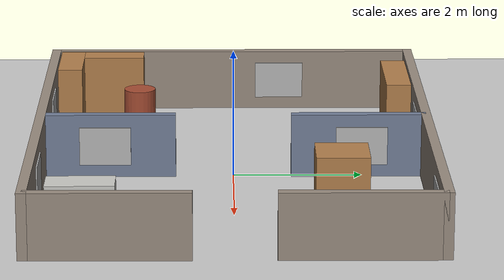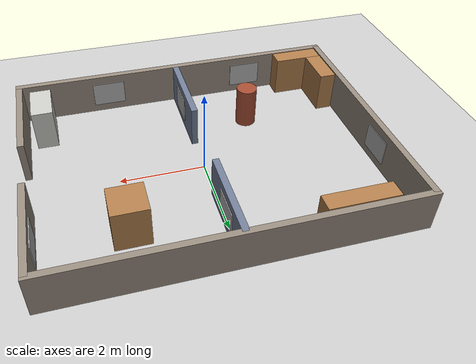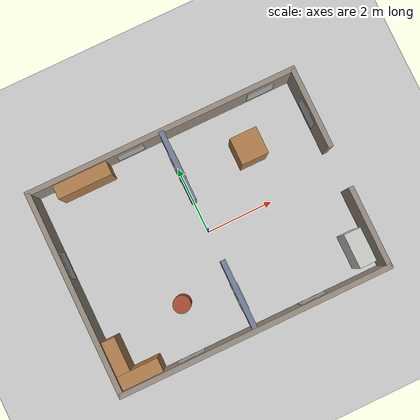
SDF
<?xml version="1.0" ?>
<sdf version="1.6">
  <world name="default">

    <include>
      <uri>model://ground_plane</uri>
    </include>

    <!-- Light source -->
    <include>
      <uri>model://sun</uri>
    </include>

    <scene>
      <ambient>0.4 0.4 0.4 1</ambient>
      <background>0.7 0.7 0.7 1</background>
      <shadows>1</shadows>
    </scene>

    <model name="building">
      <pose>0 0 0 0 0 0</pose>
      <static>1</static>

      <!-- North wall -->
      <link name="Wall_0">
        <pose>0 3 0 0 0 0</pose>
        <collision name="Wall_0_Collision">
          <geometry><box><size>8.15 0.15 1</size></box></geometry>
          <pose>0 0 0.5 0 0 0</pose>
        </collision>
        <visual name="Wall_0_Visual">
          <pose>0 0 0.5 0 0 0</pose>
          <geometry><box><size>8.15 0.15 1</size></box></geometry>
          <material>
            <ambient>0.45 0.4 0.35 1</ambient>
            <diffuse>0.6 0.55 0.5 1</diffuse>
            <specular>0 0 0 1</specular>
          </material>
        </visual>
      </link>

      <!-- South wall -->
      <link name="Wall_1">
        <pose>0 -3 0 0 0 0</pose>
        <collision name="Wall_1_Collision">
          <geometry><box><size>8.15 0.15 1</size></box></geometry>
          <pose>0 0 0.5 0 0 0</pose>
        </collision>
        <visual name="Wall_1_Visual">
          <pose>0 0 0.5 0 0 0</pose>
          <geometry><box><size>8.15 0.15 1</size></box></geometry>
          <material>
            <ambient>0.45 0.4 0.35 1</ambient>
            <diffuse>0.6 0.55 0.5 1</diffuse>
            <specular>0 0 0 1</specular>
          </material>
        </visual>
      </link>

      <!-- East wall, north of the 1.2 m entrance -->
      <link name="Wall_2">
        <pose>4 1.8 0 0 0 0</pose>
        <collision name="Wall_2_Collision">
          <geometry><box><size>0.15 2.4 1</size></box></geometry>
          <pose>0 0 0.5 0 0 0</pose>
        </collision>
        <visual name="Wall_2_Visual">
          <pose>0 0 0.5 0 0 0</pose>
          <geometry><box><size>0.15 2.4 1</size></box></geometry>
          <material>
            <ambient>0.45 0.4 0.35 1</ambient>
            <diffuse>0.6 0.55 0.5 1</diffuse>
            <specular>0 0 0 1</specular>
          </material>
        </visual>
      </link>

      <!-- East wall, south of the entrance -->
      <link name="Wall_3">
        <pose>4 -1.8 0 0 0 0</pose>
        <collision name="Wall_3_Collision">
          <geometry><box><size>0.15 2.4 1</size></box></geometry>
          <pose>0 0 0.5 0 0 0</pose>
        </collision>
        <visual name="Wall_3_Visual">
          <pose>0 0 0.5 0 0 0</pose>
          <geometry><box><size>0.15 2.4 1</size></box></geometry>
          <material>
            <ambient>0.45 0.4 0.35 1</ambient>
            <diffuse>0.6 0.55 0.5 1</diffuse>
            <specular>0 0 0 1</specular>
          </material>
        </visual>
      </link>

      <!-- West wall -->
      <link name="Wall_4">
        <pose>-4 0 0 0 0 0</pose>
        <collision name="Wall_4_Collision">
          <geometry><box><size>0.15 6 1</size></box></geometry>
          <pose>0 0 0.5 0 0 0</pose>
        </collision>
        <visual name="Wall_4_Visual">
          <pose>0 0 0.5 0 0 0</pose>
          <geometry><box><size>0.15 6 1</size></box></geometry>
          <material>
            <ambient>0.45 0.4 0.35 1</ambient>
            <diffuse>0.6 0.55 0.5 1</diffuse>
            <specular>0 0 0 1</specular>
          </material>
        </visual>
      </link>

      <!-- Interior partition, north of the 1.8 m doorway -->
      <link name="Wall_5">
        <pose>0 1.95 0 0 0 0</pose>
        <collision name="Wall_5_Collision">
          <geometry><box><size>0.15 2.1 1</size></box></geometry>
          <pose>0 0 0.5 0 0 0</pose>
        </collision>
        <visual name="Wall_5_Visual">
          <pose>0 0 0.5 0 0 0</pose>
          <geometry><box><size>0.15 2.1 1</size></box></geometry>
          <material>
            <ambient>0.35 0.4 0.45 1</ambient>
            <diffuse>0.45 0.5 0.6 1</diffuse>
            <specular>0 0 0 1</specular>
          </material>
        </visual>
      </link>

      <!-- Interior partition, south of the doorway -->
      <link name="Wall_6">
        <pose>0 -1.95 0 0 0 0</pose>
        <collision name="Wall_6_Collision">
          <geometry><box><size>0.15 2.1 1</size></box></geometry>
          <pose>0 0 0.5 0 0 0</pose>
        </collision>
        <visual name="Wall_6_Visual">
          <pose>0 0 0.5 0 0 0</pose>
          <geometry><box><size>0.15 2.1 1</size></box></geometry>
          <material>
            <ambient>0.35 0.4 0.45 1</ambient>
            <diffuse>0.45 0.5 0.6 1</diffuse>
            <specular>0 0 0 1</specular>
          </material>
        </visual>
      </link>
    </model>

    <model name="furniture">
      <pose>0 0 0 0 0 0</pose>
      <static>1</static>

      <!-- West room: bookshelf along the north wall -->
      <link name="bookshelf">
        <pose>-2.5 2.7 0 0 0 0</pose>
        <collision name="bookshelf_Collision">
          <pose>0 0 0.5 0 0 0</pose>
          <geometry><box><size>1.6 0.4 1</size></box></geometry>
        </collision>
        <visual name="bookshelf_Visual">
          <pose>0 0 0.5 0 0 0</pose>
          <geometry><box><size>1.6 0.4 1</size></box></geometry>
          <material>
            <script>
              <uri>file://media/materials/scripts/gazebo.material</uri>
              <name>Gazebo/Wood</name>
            </script>
          </material>
        </visual>
      </link>

      <!-- West room: round pillar -->
      <link name="pillar">
        <pose>-1.5 -1.5 0 0 0 0</pose>
        <collision name="pillar_Collision">
          <pose>0 0 0.5 0 0 0</pose>
          <geometry><cylinder><radius>0.25</radius><length>1</length></cylinder></geometry>
        </collision>
        <visual name="pillar_Visual">
          <pose>0 0 0.5 0 0 0</pose>
          <geometry><cylinder><radius>0.25</radius><length>1</length></cylinder></geometry>
          <material>
            <script>
              <uri>file://media/materials/scripts/gazebo.material</uri>
              <name>Gazebo/Bricks</name>
            </script>
          </material>
        </visual>
      </link>

      <!-- West room: L-shaped counter in the SW corner, long arm on the south wall -->
      <link name="counter_long">
        <pose>-3.3 -2.7 0 0 0 0</pose>
        <collision name="counter_long_Collision">
          <pose>0 0 0.5 0 0 0</pose>
          <geometry><box><size>1.2 0.4 1</size></box></geometry>
        </collision>
        <visual name="counter_long_Visual">
          <pose>0 0 0.5 0 0 0</pose>
          <geometry><box><size>1.2 0.4 1</size></box></geometry>
          <material>
            <script>
              <uri>file://media/materials/scripts/gazebo.material</uri>
              <name>Gazebo/WoodFloor</name>
            </script>
          </material>
        </visual>
      </link>

      <!-- West room: L-shaped counter, short arm on the west wall -->
      <link name="counter_short">
        <pose>-3.7 -2.0 0 0 0 0</pose>
        <collision name="counter_short_Collision">
          <pose>0 0 0.5 0 0 0</pose>
          <geometry><box><size>0.4 1.0 1</size></box></geometry>
        </collision>
        <visual name="counter_short_Visual">
          <pose>0 0 0.5 0 0 0</pose>
          <geometry><box><size>0.4 1.0 1</size></box></geometry>
          <material>
            <script>
              <uri>file://media/materials/scripts/gazebo.material</uri>
              <name>Gazebo/WoodFloor</name>
            </script>
          </material>
        </visual>
      </link>

      <!-- East room: square crate -->
      <link name="crate">
        <pose>2.0 1.6 0 0 0 0</pose>
        <collision name="crate_Collision">
          <pose>0 0 0.5 0 0 0</pose>
          <geometry><box><size>0.8 0.8 1</size></box></geometry>
        </collision>
        <visual name="crate_Visual">
          <pose>0 0 0.5 0 0 0</pose>
          <geometry><box><size>0.8 0.8 1</size></box></geometry>
          <material>
            <script>
              <uri>file://media/materials/scripts/gazebo.material</uri>
              <name>Gazebo/WoodPallet</name>
            </script>
          </material>
        </visual>
      </link>

      <!-- East room: cabinet near the SE corner -->
      <link name="cabinet">
        <pose>3.5 -2.2 0 0 0 0</pose>
        <collision name="cabinet_Collision">
          <pose>0 0 0.5 0 0 0</pose>
          <geometry><box><size>0.5 1.0 1</size></box></geometry>
        </collision>
        <visual name="cabinet_Visual">
          <pose>0 0 0.5 0 0 0</pose>
          <geometry><box><size>0.5 1.0 1</size></box></geometry>
          <material>
            <script>
              <uri>file://media/materials/scripts/gazebo.material</uri>
              <name>Gazebo/CeilingTiled</name>
            </script>
          </material>
        </visual>
      </link>
    </model>

    <model name="posters">
      <pose>0 0 0 0 0 0</pose>
      <static>1</static>

      <!-- West room, north wall -->
      <link name="poster_a">
        <pose>-1.0 2.915 0.5 0 0 0</pose>
        <visual name="poster_a_Visual">
          <geometry><box><size>0.8 0.02 0.6</size></box></geometry>
          <material>
            <script>
              <uri>model://landmarks/materials/scripts</uri>
              <uri>model://landmarks/materials/textures</uri>
              <name>Landmark/PosterA</name>
            </script>
          </material>
        </visual>
      </link>

      <!-- West room, west wall -->
      <link name="poster_b">
        <pose>-3.915 0.8 0.5 0 0 0</pose>
        <visual name="poster_b_Visual">
          <geometry><box><size>0.02 0.8 0.6</size></box></geometry>
          <material>
            <script>
              <uri>model://landmarks/materials/scripts</uri>
              <uri>model://landmarks/materials/textures</uri>
              <name>Landmark/PosterB</name>
            </script>
          </material>
        </visual>
      </link>

      <!-- West room, south wall -->
      <link name="poster_c">
        <pose>-1.9 -2.915 0.5 0 0 0</pose>
        <visual name="poster_c_Visual">
          <geometry><box><size>0.8 0.02 0.6</size></box></geometry>
          <material>
            <script>
              <uri>model://landmarks/materials/scripts</uri>
              <uri>model://landmarks/materials/textures</uri>
              <name>Landmark/PosterC</name>
            </script>
          </material>
        </visual>
      </link>

      <!-- West room, middle wall north of the doorway -->
      <link name="poster_d">
        <pose>-0.085 2.0 0.5 0 0 0</pose>
        <visual name="poster_d_Visual">
          <geometry><box><size>0.02 0.8 0.6</size></box></geometry>
          <material>
            <script>
              <uri>model://landmarks/materials/scripts</uri>
              <uri>model://landmarks/materials/textures</uri>
              <name>Landmark/PosterD</name>
            </script>
          </material>
        </visual>
      </link>

      <!-- West room, middle wall south of the doorway -->
      <link name="poster_e">
        <pose>-0.085 -2.0 0.5 0 0 0</pose>
        <visual name="poster_e_Visual">
          <geometry><box><size>0.02 0.8 0.6</size></box></geometry>
          <material>
            <script>
              <uri>model://landmarks/materials/scripts</uri>
              <uri>model://landmarks/materials/textures</uri>
              <name>Landmark/PosterE</name>
            </script>
          </material>
        </visual>
      </link>

      <!-- East room, north wall -->
      <link name="poster_f">
        <pose>3.0 2.915 0.5 0 0 0</pose>
        <visual name="poster_f_Visual">
          <geometry><box><size>0.8 0.02 0.6</size></box></geometry>
          <material>
            <script>
              <uri>model://landmarks/materials/scripts</uri>
              <uri>model://landmarks/materials/textures</uri>
              <name>Landmark/PosterF</name>
            </script>
          </material>
        </visual>
      </link>

      <!-- East room, east wall north of the opening -->
      <link name="poster_g">
        <pose>3.915 1.8 0.5 0 0 0</pose>
        <visual name="poster_g_Visual">
          <geometry><box><size>0.02 0.8 0.6</size></box></geometry>
          <material>
            <script>
              <uri>model://landmarks/materials/scripts</uri>
              <uri>model://landmarks/materials/textures</uri>
              <name>Landmark/PosterG</name>
            </script>
          </material>
        </visual>
      </link>

      <!-- East room, south wall -->
      <link name="poster_h">
        <pose>1.8 -2.915 0.5 0 0 0</pose>
        <visual name="poster_h_Visual">
          <geometry><box><size>0.8 0.02 0.6</size></box></geometry>
          <material>
            <script>
              <uri>model://landmarks/materials/scripts</uri>
              <uri>model://landmarks/materials/textures</uri>
              <name>Landmark/PosterH</name>
            </script>
          </material>
        </visual>
      </link>

      <!-- East room, middle wall north of the doorway -->
      <link name="poster_i">
        <pose>0.085 2.0 0.5 0 0 0</pose>
        <visual name="poster_i_Visual">
          <geometry><box><size>0.02 0.8 0.6</size></box></geometry>
          <material>
            <script>
              <uri>model://landmarks/materials/scripts</uri>
              <uri>model://landmarks/materials/textures</uri>
              <name>Landmark/PosterI</name>
            </script>
          </material>
        </visual>
      </link>

      <!-- East room, middle wall south of the doorway -->
      <link name="poster_j">
        <pose>0.085 -2.0 0.5 0 0 0</pose>
        <visual name="poster_j_Visual">
          <geometry><box><size>0.02 0.8 0.6</size></box></geometry>
          <material>
            <script>
              <uri>model://landmarks/materials/scripts</uri>
              <uri>model://landmarks/materials/textures</uri>
              <name>Landmark/PosterJ</name>
            </script>
          </material>
        </visual>
      </link>
    </model>

    <!-- World camera -->
    <gui fullscreen='0'>
      <camera name='world_camera'>
        <pose>-1.5 -9 8 0 0.75 1.4</pose>
        <view_controller>orbit</view_controller>
      </camera>
    </gui>

  </world>
</sdf>
